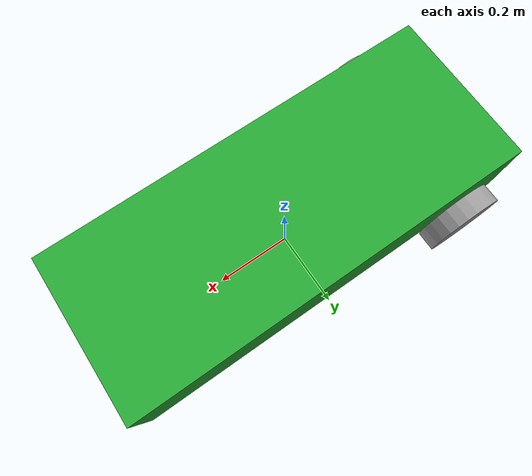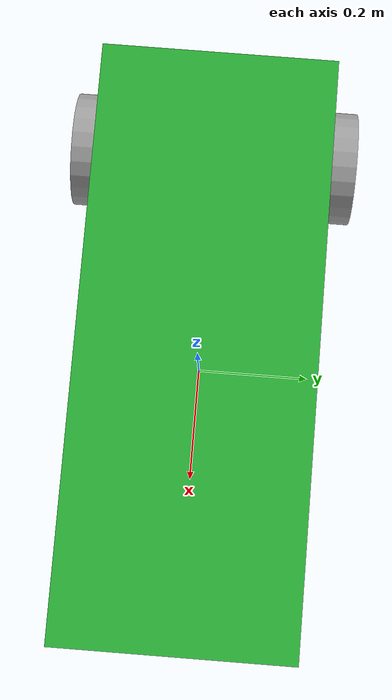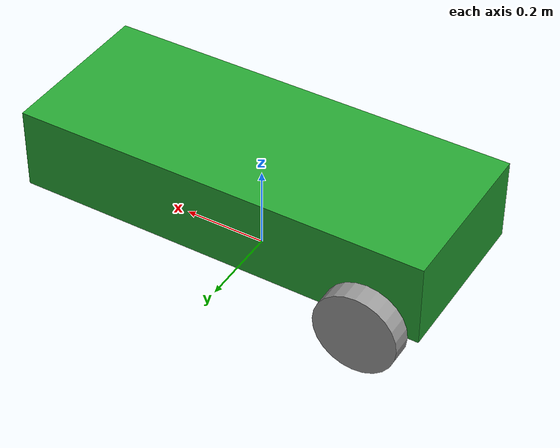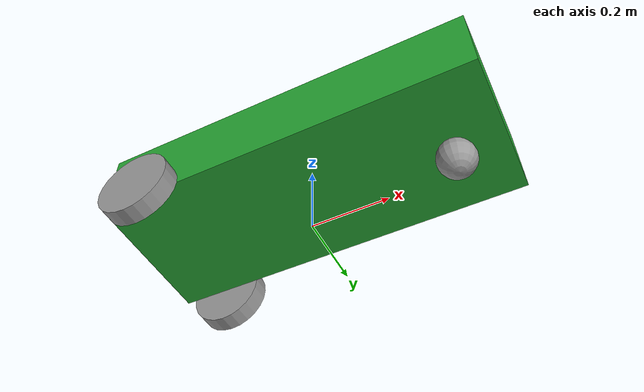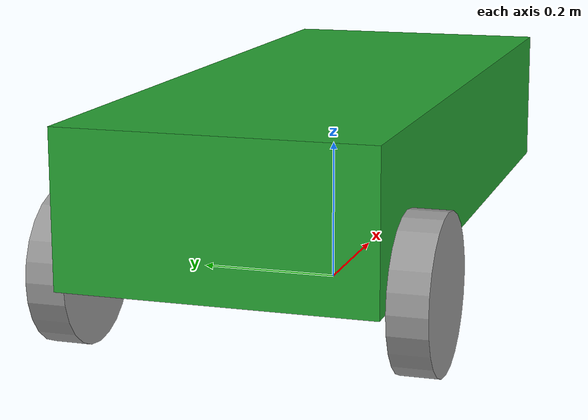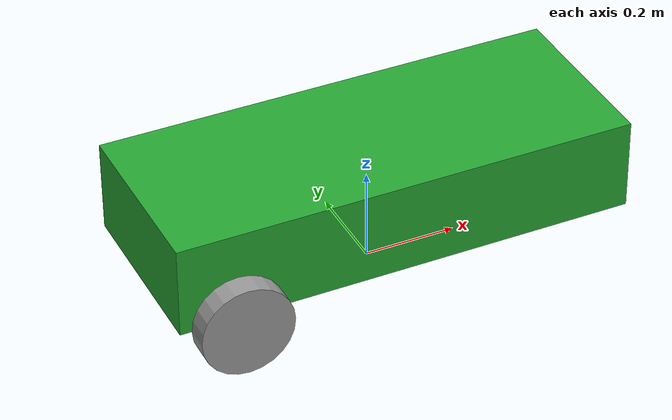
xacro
<?xml version="1.0"?>
<robot xmlns:xacro="http://www.ros.org/wiki/xacro" >
    <xacro:property name="base_length" value="1.0" />
    <xacro:property name="base_width" value="0.4" />
    <xacro:property name="base_height" value="0.2" />
    <xacro:property name="wheel_radius" value="0.1" />
    <xacro:property name="wheel_length" value="0.05" />

    <xacro:macro name="box_inertia" params="m x y z o_xyz o_rpy">
        <inertial>
            <mass value="${m}" />
            <origin xyz="${o_xyz}" rpy="${o_rpy}" />
            <inertia ixx="${(m/12)*(y*y + z*z)}" ixy="0" ixz="0"
                     iyy="${(m/12)*(x*x + z*z)}" iyz="0"
                     izz="${(m/12)*(y*y + x*x)}" />
        </inertial>
    </xacro:macro>
    <xacro:macro name="wheel_inertia" params="m x z o_xyz o_rpy">
        <inertial>
            <mass value="${m}" />
            <origin xyz="${o_xyz}" rpy="${o_rpy}" />
            <inertia ixx="${(m/12)*(3*x*x + z*z)}" ixy="0" ixz="0"
                     iyy="${(m/12)*(3*x*x + z*z)}" iyz="0"
                     izz="${(m/2)*(x*x)}" />
        </inertial>
    </xacro:macro>

    <xacro:macro name="caster_inertia" params="m x o_xyz o_rpy">
        <inertial>
            <mass value="${m}" />
            <origin xyz="${o_xyz}" rpy="${o_rpy}" />
            <inertia ixx="${(2 * m / 5)*(x*x)}" ixy="0" ixz="0"
                     iyy="${(2 * m / 5)*(x*x)}" iyz="0"
                     izz="${(2 * m / 5)*(x*x)}" />
        </inertial>
    </xacro:macro>

    <link name="base_footprint">
        <!-- empty -->
    </link>

    <link name="base_link">
        <visual>
            <geometry>
                <box size="${base_length} ${base_width} ${base_height}" />
            </geometry>
            <origin xyz="0 0 ${base_height / 2.0}" rpy="0 0 0" />
            <material name="green" />
        </visual>
        <collision>
            <geometry>
                <box size="${base_length} ${base_width} ${base_height}" />
            </geometry>
            <origin xyz="0 0 ${base_height / 2.0}" rpy="0 0 0" />
        </collision>
        <xacro:box_inertia m="5.0" x="${base_length}" y="${base_width}" z="${base_height}" o_xyz="0 0 ${base_height / 2.0}"
                                                                                           o_rpy="0 0 0" />

    </link>

    <xacro:macro name="wheel_link" params="prefix">
        <link name="${prefix}_wheel_link">
            <visual>
                <geometry>
                    <cylinder radius="${wheel_radius}" length="${wheel_length}" />
                </geometry>
                <origin xyz="0 0 0" rpy="${pi / 2.0} 0 0" />
                <material name="grey" />
            </visual>
            <collision>
                <geometry>
                    <sphere radius="${wheel_radius}" />
                </geometry>
                <origin xyz="0 0 0" rpy="0 0 0" />
            </collision>
            <xacro:wheel_inertia m="1.0" x="${wheel_radius}" z="${wheel_length}" o_xyz="0 0 0"
                                                                               o_rpy="${pi / 2.0} 0 0" />
        </link>
    </xacro:macro>

    <xacro:wheel_link prefix="right" />
    <xacro:wheel_link prefix="left" />

    <link name="caster_wheel_link">
        <visual>
            <geometry>
                <sphere radius="0.05" />
            </geometry>
            <origin xyz="0 0 0" rpy="0 0 0" />
            <material name="grey" />
        </visual>
        <collision>
            <geometry>
                <sphere radius="0.05" />
            </geometry>
            <origin xyz="0 0 0" rpy="0 0 0" />
        </collision>
        <xacro:caster_inertia m="0.5" x="0.05" o_xyz="0 0 0"
                                               o_rpy="0 0 0" />
    </link>
    <joint name="base_joint" type="fixed">
        <parent link="base_footprint" />
        <child link="base_link" />
        <origin xyz="0 0 0.1" rpy="0 0 0" />
    </joint>
    <joint name="base_caster_wheel_joint" type="fixed">
        <parent link="base_link" />
        <child link="caster_wheel_link" />
        <origin xyz="${base_length * (3.0/8.0)} 0 -0.05" rpy="0 0 0" />
    </joint>
    <joint name="left_wheel_base_joint" type="continuous">
        <parent link="base_link" />
        <child link="left_wheel_link" />
        <origin xyz="${-base_length * (3.0/8.0)} ${(base_width / 2.0) + (wheel_length / 2.0)} 0" rpy="0 0 0" />
        <axis xyz="0 1 0" />
        <limit lower="-1.57" upper="1.57" velocity="100" effort="100" />
    </joint>
    <joint name="right_wheel_base_joint" type="continuous">
        <parent link="base_link" />
        <child link="right_wheel_link" />
        <origin xyz="${-base_length * (3.0/8.0)} ${(-base_width / 2.0) + (-wheel_length / 2.0)} 0" rpy="0 0 0" />
        <axis xyz="0 1 0" />
        <limit lower="-1.57" upper="1.57" velocity="100" effort="100" />
    </joint>

</robot>
